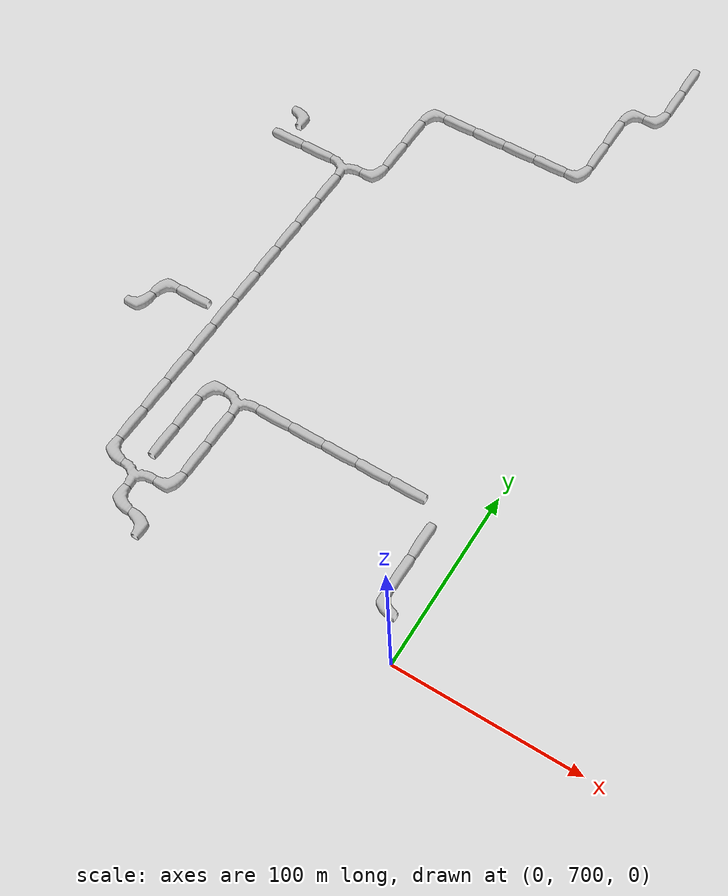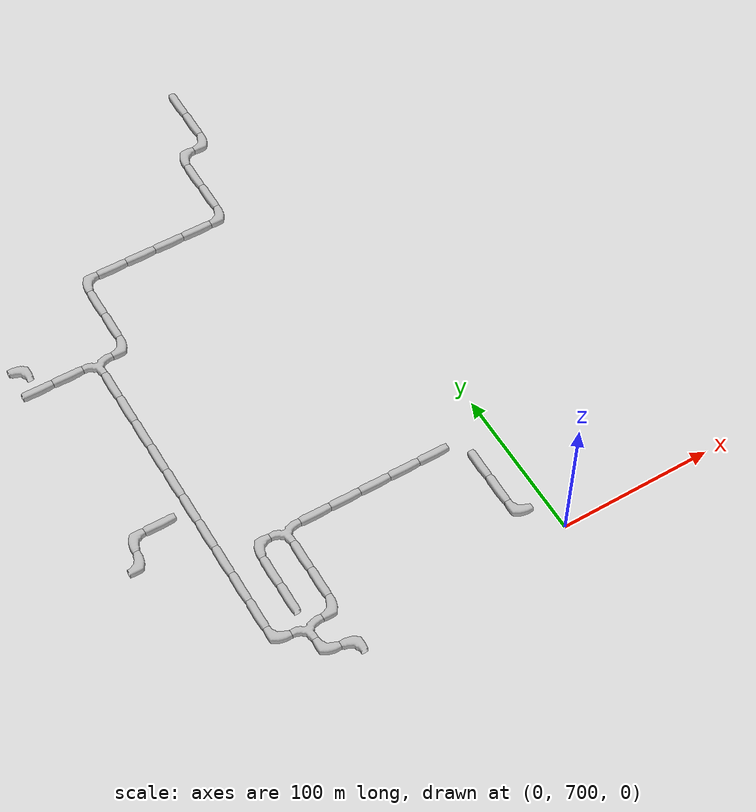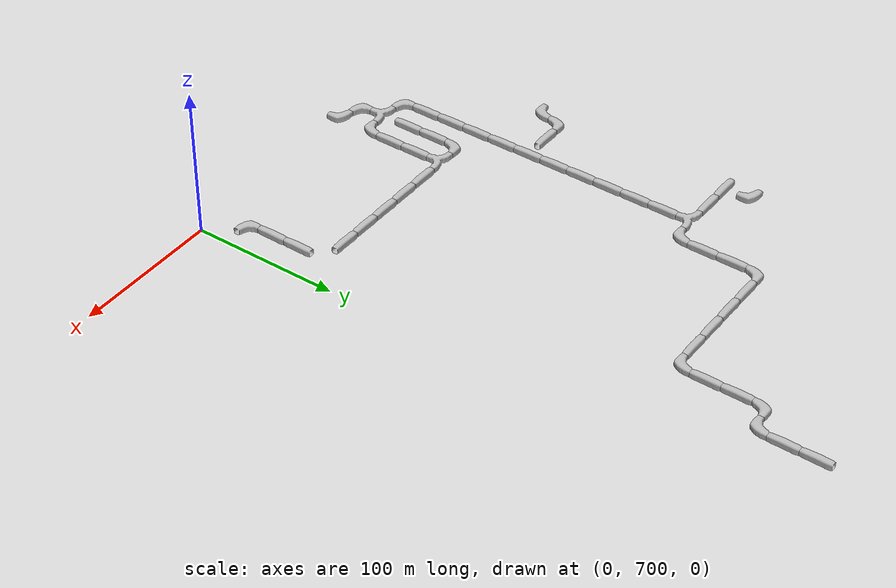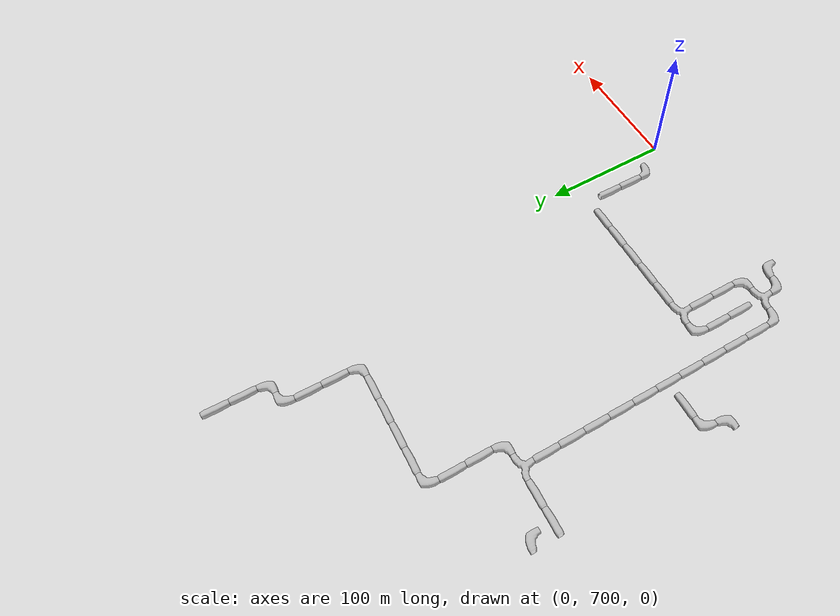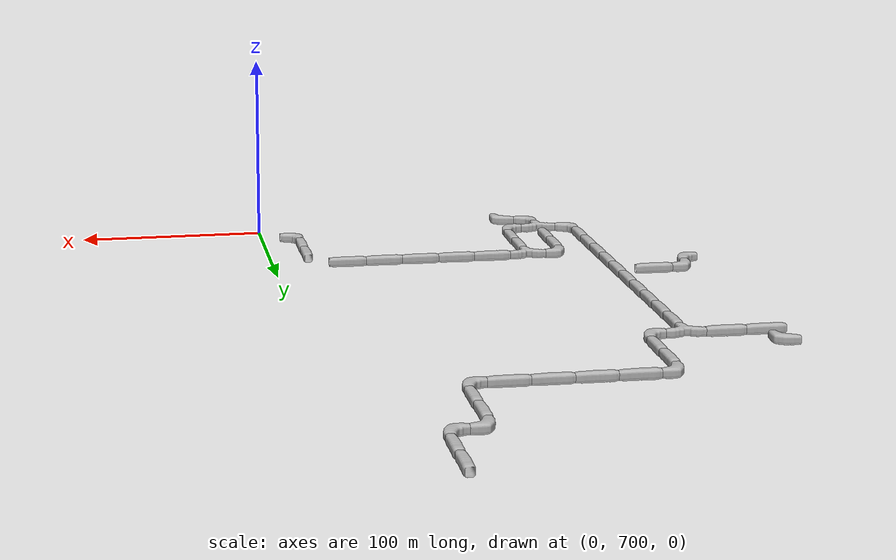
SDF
<sdf version="1.6">
 <world name="cave_16000">
  <include>
   <static>true</static>
   <name>cave_-7_35</name>
   <pose>-140 700 0 0 0 3.141592653589793</pose>
   <uri>model://cave_L_20m</uri>
  </include>
  <include>
   <static>true</static>
   <name>cave_-8_35</name>
   <pose>-160 700 0 0 0 0.0</pose>
   <uri>model://cave_L_20m</uri>
  </include>
  <include>
   <static>true</static>
   <name>cave_-8_36</name>
   <pose>-160 720 0 0 0 3.141592653589793</pose>
   <uri>model://cave_3way_20m</uri>
  </include>
  <include>
   <static>true</static>
   <name>cave_-7_36</name>
   <pose>-140 720 0 0 0 1.5707963267948966</pose>
   <uri>model://cave_L_20m</uri>
  </include>
  <include>
   <static>true</static>
   <name>cave_-7_37</name>
   <pose>-140 740 0 0 0 0.0</pose>
   <uri>model://cave_straight_20m</uri>
  </include>
  <include>
   <static>true</static>
   <name>cave_-7_38</name>
   <pose>-140 760 0 0 0 0.0</pose>
   <uri>model://cave_straight_20m</uri>
  </include>
  <include>
   <static>true</static>
   <name>cave_-7_39</name>
   <pose>-140 780 0 0 0 3.141592653589793</pose>
   <uri>model://cave_3way_20m</uri>
  </include>
  <include>
   <static>true</static>
   <name>cave_-6_39</name>
   <pose>-120 780 0 0 0 1.5707963267948966</pose>
   <uri>model://cave_straight_20m</uri>
  </include>
  <include>
   <static>true</static>
   <name>cave_-5_39</name>
   <pose>-100 780 0 0 0 1.5707963267948966</pose>
   <uri>model://cave_straight_20m</uri>
  </include>
  <include>
   <static>true</static>
   <name>cave_-4_39</name>
   <pose>-80 780 0 0 0 1.5707963267948966</pose>
   <uri>model://cave_straight_20m</uri>
  </include>
  <include>
   <static>true</static>
   <name>cave_-3_39</name>
   <pose>-60 780 0 0 0 1.5707963267948966</pose>
   <uri>model://cave_straight_20m</uri>
  </include>
  <include>
   <static>true</static>
   <name>cave_-2_39</name>
   <pose>-40 780 0 0 0 1.5707963267948966</pose>
   <uri>model://cave_straight_20m</uri>
  </include>
  <include>
   <static>true</static>
   <name>cave_-1_38</name>
   <pose>-20 760 0 0 0 0.0</pose>
   <uri>model://cave_straight_20m</uri>
  </include>
  <include>
   <static>true</static>
   <name>cave_-1_37</name>
   <pose>-20 740 0 0 0 0.0</pose>
   <uri>model://cave_straight_20m</uri>
  </include>
  <include>
   <static>true</static>
   <name>cave_-1_36</name>
   <pose>-20 720 0 0 0 0.0</pose>
   <uri>model://cave_L_20m</uri>
  </include>
  <include>
   <static>true</static>
   <name>cave_-8_39</name>
   <pose>-160 780 0 0 0 -1.5707963267948966</pose>
   <uri>model://cave_L_20m</uri>
  </include>
  <include>
   <static>true</static>
   <name>cave_-8_38</name>
   <pose>-160 760 0 0 0 0.0</pose>
   <uri>model://cave_straight_20m</uri>
  </include>
  <include>
   <static>true</static>
   <name>cave_-8_37</name>
   <pose>-160 740 0 0 0 0.0</pose>
   <uri>model://cave_straight_20m</uri>
  </include>
  <include>
   <static>true</static>
   <name>cave_-9_36</name>
   <pose>-180 720 0 0 0 0.0</pose>
   <uri>model://cave_L_20m</uri>
  </include>
  <include>
   <static>true</static>
   <name>cave_-9_37</name>
   <pose>-180 740 0 0 0 0.0</pose>
   <uri>model://cave_straight_20m</uri>
  </include>
  <include>
   <static>true</static>
   <name>cave_-9_38</name>
   <pose>-180 760 0 0 0 0.0</pose>
   <uri>model://cave_straight_20m</uri>
  </include>
  <include>
   <static>true</static>
   <name>cave_-9_39</name>
   <pose>-180 780 0 0 0 0.0</pose>
   <uri>model://cave_straight_20m</uri>
  </include>
  <include>
   <static>true</static>
   <name>cave_-9_40</name>
   <pose>-180 800 0 0 0 0.0</pose>
   <uri>model://cave_straight_20m</uri>
  </include>
  <include>
   <static>true</static>
   <name>cave_-9_41</name>
   <pose>-180 820 0 0 0 0.0</pose>
   <uri>model://cave_straight_20m</uri>
  </include>
  <include>
   <static>true</static>
   <name>cave_-9_42</name>
   <pose>-180 840 0 0 0 0.0</pose>
   <uri>model://cave_straight_20m</uri>
  </include>
  <include>
   <static>true</static>
   <name>cave_-9_43</name>
   <pose>-180 860 0 0 0 0.0</pose>
   <uri>model://cave_straight_20m</uri>
  </include>
  <include>
   <static>true</static>
   <name>cave_-9_44</name>
   <pose>-180 880 0 0 0 0.0</pose>
   <uri>model://cave_straight_20m</uri>
  </include>
  <include>
   <static>true</static>
   <name>cave_-9_45</name>
   <pose>-180 900 0 0 0 0.0</pose>
   <uri>model://cave_straight_20m</uri>
  </include>
  <include>
   <static>true</static>
   <name>cave_-9_46</name>
   <pose>-180 920 0 0 0 0.0</pose>
   <uri>model://cave_straight_20m</uri>
  </include>
  <include>
   <static>true</static>
   <name>cave_-9_47</name>
   <pose>-180 940 0 0 0 3.141592653589793</pose>
   <uri>model://cave_3way_20m</uri>
  </include>
  <include>
   <static>true</static>
   <name>cave_-8_47</name>
   <pose>-160 940 0 0 0 1.5707963267948966</pose>
   <uri>model://cave_L_20m</uri>
  </include>
  <include>
   <static>true</static>
   <name>cave_-8_48</name>
   <pose>-160 960 0 0 0 0.0</pose>
   <uri>model://cave_straight_20m</uri>
  </include>
  <include>
   <static>true</static>
   <name>cave_-8_49</name>
   <pose>-160 980 0 0 0 0.0</pose>
   <uri>model://cave_straight_20m</uri>
  </include>
  <include>
   <static>true</static>
   <name>cave_-8_50</name>
   <pose>-160 1000 0 0 0 -1.5707963267948966</pose>
   <uri>model://cave_L_20m</uri>
  </include>
  <include>
   <static>true</static>
   <name>cave_-7_50</name>
   <pose>-140 1000 0 0 0 1.5707963267948966</pose>
   <uri>model://cave_straight_20m</uri>
  </include>
  <include>
   <static>true</static>
   <name>cave_-6_50</name>
   <pose>-120 1000 0 0 0 1.5707963267948966</pose>
   <uri>model://cave_straight_20m</uri>
  </include>
  <include>
   <static>true</static>
   <name>cave_-5_50</name>
   <pose>-100 1000 0 0 0 1.5707963267948966</pose>
   <uri>model://cave_straight_20m</uri>
  </include>
  <include>
   <static>true</static>
   <name>cave_-4_50</name>
   <pose>-80 1000 0 0 0 1.5707963267948966</pose>
   <uri>model://cave_straight_20m</uri>
  </include>
  <include>
   <static>true</static>
   <name>cave_-3_50</name>
   <pose>-60 1000 0 0 0 1.5707963267948966</pose>
   <uri>model://cave_L_20m</uri>
  </include>
  <include>
   <static>true</static>
   <name>cave_-3_51</name>
   <pose>-60 1020 0 0 0 0.0</pose>
   <uri>model://cave_straight_20m</uri>
  </include>
  <include>
   <static>true</static>
   <name>cave_-3_52</name>
   <pose>-60 1040 0 0 0 0.0</pose>
   <uri>model://cave_straight_20m</uri>
  </include>
  <include>
   <static>true</static>
   <name>cave_-3_53</name>
   <pose>-60 1060 0 0 0 -1.5707963267948966</pose>
   <uri>model://cave_L_20m</uri>
  </include>
  <include>
   <static>true</static>
   <name>cave_-2_53</name>
   <pose>-40 1060 0 0 0 1.5707963267948966</pose>
   <uri>model://cave_L_20m</uri>
  </include>
  <include>
   <static>true</static>
   <name>cave_-2_54</name>
   <pose>-40 1080 0 0 0 0.0</pose>
   <uri>model://cave_straight_20m</uri>
  </include>
  <include>
   <static>true</static>
   <name>cave_-2_55</name>
   <pose>-40 1100 0 0 0 0.0</pose>
   <uri>model://cave_straight_20m</uri>
  </include>
  <include>
   <static>true</static>
   <name>cave_-10_47</name>
   <pose>-200 940 0 0 0 1.5707963267948966</pose>
   <uri>model://cave_straight_20m</uri>
  </include>
  <include>
   <static>true</static>
   <name>cave_-11_47</name>
   <pose>-220 940 0 0 0 1.5707963267948966</pose>
   <uri>model://cave_straight_20m</uri>
  </include>
  <include>
   <static>true</static>
   <name>cave_-11_40</name>
   <pose>-220 800 0 0 0 1.5707963267948966</pose>
   <uri>model://cave_L_20m</uri>
  </include>
  <include>
   <static>true</static>
   <name>cave_-11_41</name>
   <pose>-220 820 0 0 0 -1.5707963267948966</pose>
   <uri>model://cave_L_20m</uri>
  </include>
  <include>
   <static>true</static>
   <name>cave_-10_41</name>
   <pose>-200 820 0 0 0 1.5707963267948966</pose>
   <uri>model://cave_straight_20m</uri>
  </include>
  <include>
   <static>true</static>
   <name>cave_-11_48</name>
   <pose>-220 960 0 0 0 3.141592653589793</pose>
   <uri>model://cave_L_20m</uri>
  </include>
 </world>
</sdf>
